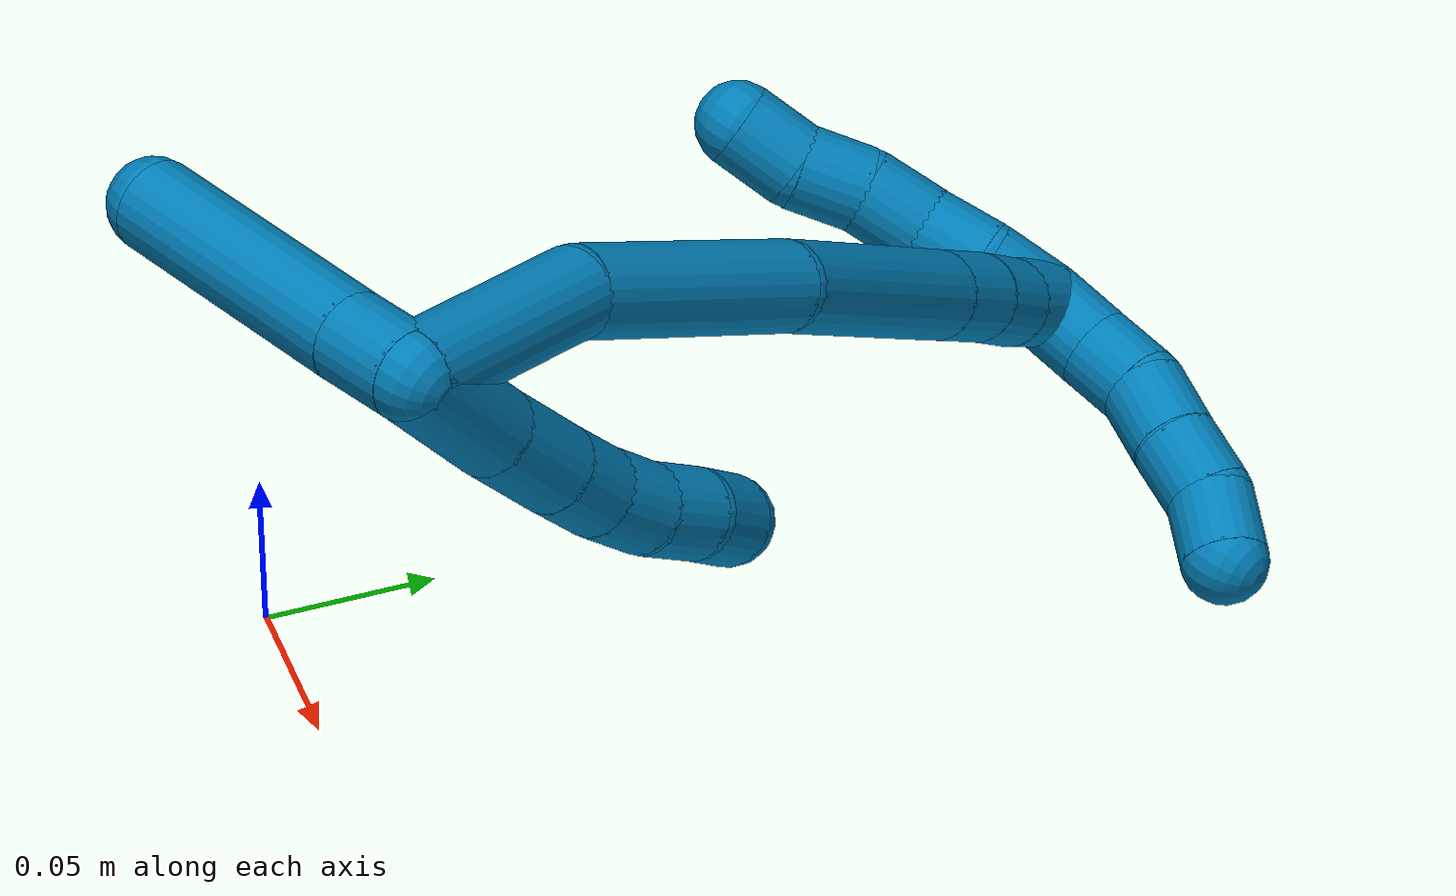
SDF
<sdf version="1.7">
 <world name="default">
  <model name="9">
   <static>0</static>
   <link name="9">
    <collision name="collision-cylinder-e_1_2_8">
     <pose>0.015421 0.012233 0.004197 -1.2403 0.872911 -0.643106</pose>
     <geometry><cylinder><radius>0.0125</radius><length>0.040253</length></cylinder></geometry>
     <surface>
      <friction><ode><mu>1.16</mu><mu2>1.16</mu2><slip1>0</slip1><slip2>0</slip2></ode></friction>
      <contact><ode><kp>1e+06</kp><kd>1</kd><max_vel>0</max_vel><min_depth>0.001</min_depth></ode></contact>
     </surface>
    </collision>
    <visual name="visual-cylinder-e_1_2_8">
     <pose>0.015421 0.012233 0.004197 -1.2403 0.872911 -0.643106</pose>
     <geometry><cylinder><radius>0.0125</radius><length>0.040253</length></cylinder></geometry>
     <material><ambient>0 0.490196 0.709804 1</ambient></material>
    </visual>
    <collision name="collision-cylinder-e_2_8_9">
     <pose>0.041478 0.033811 0.01191 -1.21091 0.817032 -0.582215</pose>
     <geometry><cylinder><radius>0.0125</radius><length>0.029174</length></cylinder></geometry>
     <surface>
      <friction><ode><mu>1.16</mu><mu2>1.16</mu2><slip1>0</slip1><slip2>0</slip2></ode></friction>
      <contact><ode><kp>1e+06</kp><kd>1</kd><max_vel>0</max_vel><min_depth>0.001</min_depth></ode></contact>
     </surface>
    </collision>
    <visual name="visual-cylinder-e_2_8_9">
     <pose>0.041478 0.033811 0.01191 -1.21091 0.817032 -0.582215</pose>
     <geometry><cylinder><radius>0.0125</radius><length>0.029174</length></cylinder></geometry>
     <material><ambient>0 0.490196 0.709804 1</ambient></material>
    </visual>
    <collision name="collision-cylinder-e_3_9_10">
     <pose>0.059451 0.049879 0.017755 -1.23732 0.800671 -0.585233</pose>
     <geometry><cylinder><radius>0.0125</radius><length>0.020444</length></cylinder></geometry>
     <surface>
      <friction><ode><mu>1.16</mu><mu2>1.16</mu2><slip1>0</slip1><slip2>0</slip2></ode></friction>
      <contact><ode><kp>1e+06</kp><kd>1</kd><max_vel>0</max_vel><min_depth>0.001</min_depth></ode></contact>
     </surface>
    </collision>
    <visual name="visual-cylinder-e_3_9_10">
     <pose>0.059451 0.049879 0.017755 -1.23732 0.800671 -0.585233</pose>
     <geometry><cylinder><radius>0.0125</radius><length>0.020444</length></cylinder></geometry>
     <material><ambient>0 0.490196 0.709804 1</ambient></material>
    </visual>
    <collision name="collision-cylinder-e_4_10_11">
     <pose>0.073129 0.063867 0.022905 -1.20044 0.683065 -0.477324</pose>
     <geometry><cylinder><radius>0.0125</radius><length>0.02009</length></cylinder></geometry>
     <surface>
      <friction><ode><mu>1.16</mu><mu2>1.16</mu2><slip1>0</slip1><slip2>0</slip2></ode></friction>
      <contact><ode><kp>1e+06</kp><kd>1</kd><max_vel>0</max_vel><min_depth>0.001</min_depth></ode></contact>
     </surface>
    </collision>
    <visual name="visual-cylinder-e_4_10_11">
     <pose>0.073129 0.063867 0.022905 -1.20044 0.683065 -0.477324</pose>
     <geometry><cylinder><radius>0.0125</radius><length>0.02009</length></cylinder></geometry>
     <material><ambient>0 0.490196 0.709804 1</ambient></material>
    </visual>
    <collision name="collision-cylinder-e_5_11_12">
     <pose>0.084755 0.079347 0.027881 -1.31423 0.556643 -0.43395</pose>
     <geometry><cylinder><radius>0.0125</radius><length>0.020012</length></cylinder></geometry>
     <surface>
      <friction><ode><mu>1.16</mu><mu2>1.16</mu2><slip1>0</slip1><slip2>0</slip2></ode></friction>
      <contact><ode><kp>1e+06</kp><kd>1</kd><max_vel>0</max_vel><min_depth>0.001</min_depth></ode></contact>
     </surface>
    </collision>
    <visual name="visual-cylinder-e_5_11_12">
     <pose>0.084755 0.079347 0.027881 -1.31423 0.556643 -0.43395</pose>
     <geometry><cylinder><radius>0.0125</radius><length>0.020012</length></cylinder></geometry>
     <material><ambient>0 0.490196 0.709804 1</ambient></material>
    </visual>
    <collision name="collision-cylinder-e_6_12_6">
     <pose>0.096499 0.095207 0.03043 -1.51928 0.700855 -0.66827</pose>
     <geometry><cylinder><radius>0.0125</radius><length>0.020027</length></cylinder></geometry>
     <surface>
      <friction><ode><mu>1.16</mu><mu2>1.16</mu2><slip1>0</slip1><slip2>0</slip2></ode></friction>
      <contact><ode><kp>1e+06</kp><kd>1</kd><max_vel>0</max_vel><min_depth>0.001</min_depth></ode></contact>
     </surface>
    </collision>
    <visual name="visual-cylinder-e_6_12_6">
     <pose>0.096499 0.095207 0.03043 -1.51928 0.700855 -0.66827</pose>
     <geometry><cylinder><radius>0.0125</radius><length>0.020027</length></cylinder></geometry>
     <material><ambient>0 0.490196 0.709804 1</ambient></material>
    </visual>
    <collision name="collision-cylinder-e_1_2_13">
     <pose>0.002239 0.001292 -0.010914 -3.02372 0.200938 -2.08249</pose>
     <geometry><cylinder><radius>0.0125</radius><length>0.022431</length></cylinder></geometry>
     <surface>
      <friction><ode><mu>1.16</mu><mu2>1.16</mu2><slip1>0</slip1><slip2>0</slip2></ode></friction>
      <contact><ode><kp>1e+06</kp><kd>1</kd><max_vel>0</max_vel><min_depth>0.001</min_depth></ode></contact>
     </surface>
    </collision>
    <visual name="visual-cylinder-e_1_2_13">
     <pose>0.002239 0.001292 -0.010914 -3.02372 0.200938 -2.08249</pose>
     <geometry><cylinder><radius>0.0125</radius><length>0.022431</length></cylinder></geometry>
     <material><ambient>0 0.490196 0.709804 1</ambient></material>
    </visual>
    <collision name="collision-cylinder-e_2_13_5">
     <pose>0.01128 0.007534 -0.059688 -3.01161 0.176305 -1.87215</pose>
     <geometry><cylinder><radius>0.0125</radius><length>0.077569</length></cylinder></geometry>
     <surface>
      <friction><ode><mu>1.16</mu><mu2>1.16</mu2><slip1>0</slip1><slip2>0</slip2></ode></friction>
      <contact><ode><kp>1e+06</kp><kd>1</kd><max_vel>0</max_vel><min_depth>0.001</min_depth></ode></contact>
     </surface>
    </collision>
    <visual name="visual-cylinder-e_2_13_5">
     <pose>0.01128 0.007534 -0.059688 -3.01161 0.176305 -1.87215</pose>
     <geometry><cylinder><radius>0.0125</radius><length>0.077569</length></cylinder></geometry>
     <material><ambient>0 0.490196 0.709804 1</ambient></material>
    </visual>
    <collision name="collision-cylinder-e_1_2_14">
     <pose>0.008455 0.032942 -0.000794 -1.59489 0.25117 -0.257229</pose>
     <geometry><cylinder><radius>0.0125</radius><length>0.068037</length></cylinder></geometry>
     <surface>
      <friction><ode><mu>1.16</mu><mu2>1.16</mu2><slip1>0</slip1><slip2>0</slip2></ode></friction>
      <contact><ode><kp>1e+06</kp><kd>1</kd><max_vel>0</max_vel><min_depth>0.001</min_depth></ode></contact>
     </surface>
    </collision>
    <visual name="visual-cylinder-e_1_2_14">
     <pose>0.008455 0.032942 -0.000794 -1.59489 0.25117 -0.257229</pose>
     <geometry><cylinder><radius>0.0125</radius><length>0.068037</length></cylinder></geometry>
     <material><ambient>0 0.490196 0.709804 1</ambient></material>
    </visual>
    <collision name="collision-cylinder-e_2_14_15">
     <pose>0.034687 0.101895 0.005932 -1.36495 0.450151 -0.367964</pose>
     <geometry><cylinder><radius>0.0125</radius><length>0.081717</length></cylinder></geometry>
     <surface>
      <friction><ode><mu>1.16</mu><mu2>1.16</mu2><slip1>0</slip1><slip2>0</slip2></ode></friction>
      <contact><ode><kp>1e+06</kp><kd>1</kd><max_vel>0</max_vel><min_depth>0.001</min_depth></ode></contact>
     </surface>
    </collision>
    <visual name="visual-cylinder-e_2_14_15">
     <pose>0.034687 0.101895 0.005932 -1.36495 0.450151 -0.367964</pose>
     <geometry><cylinder><radius>0.0125</radius><length>0.081717</length></cylinder></geometry>
     <material><ambient>0 0.490196 0.709804 1</ambient></material>
    </visual>
    <collision name="collision-cylinder-e_3_15_16">
     <pose>0.077142 0.173419 0.014624 -1.53777 0.607028 -0.588442</pose>
     <geometry><cylinder><radius>0.0125</radius><length>0.086521</length></cylinder></geometry>
     <surface>
      <friction><ode><mu>1.16</mu><mu2>1.16</mu2><slip1>0</slip1><slip2>0</slip2></ode></friction>
      <contact><ode><kp>1e+06</kp><kd>1</kd><max_vel>0</max_vel><min_depth>0.001</min_depth></ode></contact>
     </surface>
    </collision>
    <visual name="visual-cylinder-e_3_15_16">
     <pose>0.077142 0.173419 0.014624 -1.53777 0.607028 -0.588442</pose>
     <geometry><cylinder><radius>0.0125</radius><length>0.086521</length></cylinder></geometry>
     <material><ambient>0 0.490196 0.709804 1</ambient></material>
    </visual>
    <collision name="collision-cylinder-e_4_16_17">
     <pose>0.108405 0.218609 0.016272 -1.52178 0.596986 -0.569975</pose>
     <geometry><cylinder><radius>0.0125</radius><length>0.02343</length></cylinder></geometry>
     <surface>
      <friction><ode><mu>1.16</mu><mu2>1.16</mu2><slip1>0</slip1><slip2>0</slip2></ode></friction>
      <contact><ode><kp>1e+06</kp><kd>1</kd><max_vel>0</max_vel><min_depth>0.001</min_depth></ode></contact>
     </surface>
    </collision>
    <visual name="visual-cylinder-e_4_16_17">
     <pose>0.108405 0.218609 0.016272 -1.52178 0.596986 -0.569975</pose>
     <geometry><cylinder><radius>0.0125</radius><length>0.02343</length></cylinder></geometry>
     <material><ambient>0 0.490196 0.709804 1</ambient></material>
    </visual>
    <collision name="collision-cylinder-e_5_17_18">
     <pose>0.121104 0.236327 0.017146 -1.52122 0.649451 -0.620047</pose>
     <geometry><cylinder><radius>0.0125</radius><length>0.020217</length></cylinder></geometry>
     <surface>
      <friction><ode><mu>1.16</mu><mu2>1.16</mu2><slip1>0</slip1><slip2>0</slip2></ode></friction>
      <contact><ode><kp>1e+06</kp><kd>1</kd><max_vel>0</max_vel><min_depth>0.001</min_depth></ode></contact>
     </surface>
    </collision>
    <visual name="visual-cylinder-e_5_17_18">
     <pose>0.121104 0.236327 0.017146 -1.52122 0.649451 -0.620047</pose>
     <geometry><cylinder><radius>0.0125</radius><length>0.020217</length></cylinder></geometry>
     <material><ambient>0 0.490196 0.709804 1</ambient></material>
    </visual>
    <collision name="collision-cylinder-e_6_18_1">
     <pose>0.132774 0.252722 0.017859 -1.53315 0.586637 -0.566117</pose>
     <geometry><cylinder><radius>0.0125</radius><length>0.020077</length></cylinder></geometry>
     <surface>
      <friction><ode><mu>1.16</mu><mu2>1.16</mu2><slip1>0</slip1><slip2>0</slip2></ode></friction>
      <contact><ode><kp>1e+06</kp><kd>1</kd><max_vel>0</max_vel><min_depth>0.001</min_depth></ode></contact>
     </surface>
    </collision>
    <visual name="visual-cylinder-e_6_18_1">
     <pose>0.132774 0.252722 0.017859 -1.53315 0.586637 -0.566117</pose>
     <geometry><cylinder><radius>0.0125</radius><length>0.020077</length></cylinder></geometry>
     <material><ambient>0 0.490196 0.709804 1</ambient></material>
    </visual>
    <collision name="collision-cylinder-e_1_1_19">
     <pose>0.140434 0.26123 0.027949 -0.015774 0.211933 -0.001678</pose>
     <geometry><cylinder><radius>0.0125</radius><length>0.02</length></cylinder></geometry>
     <surface>
      <friction><ode><mu>1.16</mu><mu2>1.16</mu2><slip1>0</slip1><slip2>0</slip2></ode></friction>
      <contact><ode><kp>1e+06</kp><kd>1</kd><max_vel>0</max_vel><min_depth>0.001</min_depth></ode></contact>
     </surface>
    </collision>
    <visual name="visual-cylinder-e_1_1_19">
     <pose>0.140434 0.26123 0.027949 -0.015774 0.211933 -0.001678</pose>
     <geometry><cylinder><radius>0.0125</radius><length>0.02</length></cylinder></geometry>
     <material><ambient>0 0.490196 0.709804 1</ambient></material>
    </visual>
    <collision name="collision-cylinder-e_2_19_20">
     <pose>0.14204 0.259523 0.047537 0.187511 -0.049777 -0.004682</pose>
     <geometry><cylinder><radius>0.0125</radius><length>0.02</length></cylinder></geometry>
     <surface>
      <friction><ode><mu>1.16</mu><mu2>1.16</mu2><slip1>0</slip1><slip2>0</slip2></ode></friction>
      <contact><ode><kp>1e+06</kp><kd>1</kd><max_vel>0</max_vel><min_depth>0.001</min_depth></ode></contact>
     </surface>
    </collision>
    <visual name="visual-cylinder-e_2_19_20">
     <pose>0.14204 0.259523 0.047537 0.187511 -0.049777 -0.004682</pose>
     <geometry><cylinder><radius>0.0125</radius><length>0.02</length></cylinder></geometry>
     <material><ambient>0 0.490196 0.709804 1</ambient></material>
    </visual>
    <collision name="collision-cylinder-e_3_20_21">
     <pose>0.142726 0.253558 0.066392 0.425959 0.1186 0.025677</pose>
     <geometry><cylinder><radius>0.0125</radius><length>0.02</length></cylinder></geometry>
     <surface>
      <friction><ode><mu>1.16</mu><mu2>1.16</mu2><slip1>0</slip1><slip2>0</slip2></ode></friction>
      <contact><ode><kp>1e+06</kp><kd>1</kd><max_vel>0</max_vel><min_depth>0.001</min_depth></ode></contact>
     </surface>
    </collision>
    <visual name="visual-cylinder-e_3_20_21">
     <pose>0.142726 0.253558 0.066392 0.425959 0.1186 0.025677</pose>
     <geometry><cylinder><radius>0.0125</radius><length>0.02</length></cylinder></geometry>
     <material><ambient>0 0.490196 0.709804 1</ambient></material>
    </visual>
    <collision name="collision-cylinder-e_4_21_22">
     <pose>0.14546 0.245995 0.084687 0.357816 0.155709 0.028214</pose>
     <geometry><cylinder><radius>0.0125</radius><length>0.02</length></cylinder></geometry>
     <surface>
      <friction><ode><mu>1.16</mu><mu2>1.16</mu2><slip1>0</slip1><slip2>0</slip2></ode></friction>
      <contact><ode><kp>1e+06</kp><kd>1</kd><max_vel>0</max_vel><min_depth>0.001</min_depth></ode></contact>
     </surface>
    </collision>
    <visual name="visual-cylinder-e_4_21_22">
     <pose>0.14546 0.245995 0.084687 0.357816 0.155709 0.028214</pose>
     <geometry><cylinder><radius>0.0125</radius><length>0.02</length></cylinder></geometry>
     <material><ambient>0 0.490196 0.709804 1</ambient></material>
    </visual>
    <collision name="collision-cylinder-e_5_22_4">
     <pose>0.149407 0.236558 0.101591 0.663229 0.241997 0.083687</pose>
     <geometry><cylinder><radius>0.0125</radius><length>0.02</length></cylinder></geometry>
     <surface>
      <friction><ode><mu>1.16</mu><mu2>1.16</mu2><slip1>0</slip1><slip2>0</slip2></ode></friction>
      <contact><ode><kp>1e+06</kp><kd>1</kd><max_vel>0</max_vel><min_depth>0.001</min_depth></ode></contact>
     </surface>
    </collision>
    <visual name="visual-cylinder-e_5_22_4">
     <pose>0.149407 0.236558 0.101591 0.663229 0.241997 0.083687</pose>
     <geometry><cylinder><radius>0.0125</radius><length>0.02</length></cylinder></geometry>
     <material><ambient>0 0.490196 0.709804 1</ambient></material>
    </visual>
    <collision name="collision-cylinder-e_1_1_23">
     <pose>0.134734 0.258086 0.009335 2.81534 -0.367935 -1.69317</pose>
     <geometry><cylinder><radius>0.0125</radius><length>0.02</length></cylinder></geometry>
     <surface>
      <friction><ode><mu>1.16</mu><mu2>1.16</mu2><slip1>0</slip1><slip2>0</slip2></ode></friction>
      <contact><ode><kp>1e+06</kp><kd>1</kd><max_vel>0</max_vel><min_depth>0.001</min_depth></ode></contact>
     </surface>
    </collision>
    <visual name="visual-cylinder-e_1_1_23">
     <pose>0.134734 0.258086 0.009335 2.81534 -0.367935 -1.69317</pose>
     <geometry><cylinder><radius>0.0125</radius><length>0.02</length></cylinder></geometry>
     <material><ambient>0 0.490196 0.709804 1</ambient></material>
    </visual>
    <collision name="collision-cylinder-e_2_23_24">
     <pose>0.12957 0.252826 -0.009115 2.90977 -0.157399 -1.1907</pose>
     <geometry><cylinder><radius>0.0125</radius><length>0.02</length></cylinder></geometry>
     <surface>
      <friction><ode><mu>1.16</mu><mu2>1.16</mu2><slip1>0</slip1><slip2>0</slip2></ode></friction>
      <contact><ode><kp>1e+06</kp><kd>1</kd><max_vel>0</max_vel><min_depth>0.001</min_depth></ode></contact>
     </surface>
    </collision>
    <visual name="visual-cylinder-e_2_23_24">
     <pose>0.12957 0.252826 -0.009115 2.90977 -0.157399 -1.1907</pose>
     <geometry><cylinder><radius>0.0125</radius><length>0.02</length></cylinder></geometry>
     <material><ambient>0 0.490196 0.709804 1</ambient></material>
    </visual>
    <collision name="collision-cylinder-e_3_24_25">
     <pose>0.12468 0.247364 -0.027602 2.79622 -0.338674 -1.55082</pose>
     <geometry><cylinder><radius>0.0125</radius><length>0.02</length></cylinder></geometry>
     <surface>
      <friction><ode><mu>1.16</mu><mu2>1.16</mu2><slip1>0</slip1><slip2>0</slip2></ode></friction>
      <contact><ode><kp>1e+06</kp><kd>1</kd><max_vel>0</max_vel><min_depth>0.001</min_depth></ode></contact>
     </surface>
    </collision>
    <visual name="visual-cylinder-e_3_24_25">
     <pose>0.12468 0.247364 -0.027602 2.79622 -0.338674 -1.55082</pose>
     <geometry><cylinder><radius>0.0125</radius><length>0.02</length></cylinder></geometry>
     <material><ambient>0 0.490196 0.709804 1</ambient></material>
    </visual>
    <collision name="collision-cylinder-e_4_25_26">
     <pose>0.119014 0.238918 -0.044658 2.57077 -0.236509 -0.769464</pose>
     <geometry><cylinder><radius>0.0125</radius><length>0.02</length></cylinder></geometry>
     <surface>
      <friction><ode><mu>1.16</mu><mu2>1.16</mu2><slip1>0</slip1><slip2>0</slip2></ode></friction>
      <contact><ode><kp>1e+06</kp><kd>1</kd><max_vel>0</max_vel><min_depth>0.001</min_depth></ode></contact>
     </surface>
    </collision>
    <visual name="visual-cylinder-e_4_25_26">
     <pose>0.119014 0.238918 -0.044658 2.57077 -0.236509 -0.769464</pose>
     <geometry><cylinder><radius>0.0125</radius><length>0.02</length></cylinder></geometry>
     <material><ambient>0 0.490196 0.709804 1</ambient></material>
    </visual>
    <collision name="collision-cylinder-e_5_26_3">
     <pose>0.112796 0.230757 -0.061586 2.82068 -0.397978 -1.78897</pose>
     <geometry><cylinder><radius>0.0125</radius><length>0.02</length></cylinder></geometry>
     <surface>
      <friction><ode><mu>1.16</mu><mu2>1.16</mu2><slip1>0</slip1><slip2>0</slip2></ode></friction>
      <contact><ode><kp>1e+06</kp><kd>1</kd><max_vel>0</max_vel><min_depth>0.001</min_depth></ode></contact>
     </surface>
    </collision>
    <visual name="visual-cylinder-e_5_26_3">
     <pose>0.112796 0.230757 -0.061586 2.82068 -0.397978 -1.78897</pose>
     <geometry><cylinder><radius>0.0125</radius><length>0.02</length></cylinder></geometry>
     <material><ambient>0 0.490196 0.709804 1</ambient></material>
    </visual>
    <collision name="collision-sphere-3">
     <pose>0.10892 0.227849 -0.070334 0 -0 0</pose>
     <geometry><sphere><radius>0.0125</radius></sphere></geometry>
     <surface>
      <friction><ode><mu>1.16</mu><mu2>1.16</mu2><slip1>0</slip1><slip2>0</slip2></ode></friction>
      <contact><ode><kp>1e+06</kp><kd>1</kd><max_vel>0</max_vel><min_depth>0.001</min_depth></ode></contact>
     </surface>
    </collision>
    <visual name="visual-sphere-3">
     <pose>0.10892 0.227849 -0.070334 0 -0 0</pose>
     <geometry><sphere><radius>0.0125</radius></sphere></geometry>
     <material><ambient>0 0.490196 0.709804 1</ambient></material>
    </visual>
    <collision name="collision-sphere-26">
     <pose>0.116671 0.233665 -0.052838 0 -0 0</pose>
     <geometry><sphere><radius>0.0125</radius></sphere></geometry>
     <surface>
      <friction><ode><mu>1.16</mu><mu2>1.16</mu2><slip1>0</slip1><slip2>0</slip2></ode></friction>
      <contact><ode><kp>1e+06</kp><kd>1</kd><max_vel>0</max_vel><min_depth>0.001</min_depth></ode></contact>
     </surface>
    </collision>
    <visual name="visual-sphere-26">
     <pose>0.116671 0.233665 -0.052838 0 -0 0</pose>
     <geometry><sphere><radius>0.0125</radius></sphere></geometry>
     <material><ambient>0 0.490196 0.709804 1</ambient></material>
    </visual>
    <collision name="collision-sphere-25">
     <pose>0.121357 0.244171 -0.036477 0 -0 0</pose>
     <geometry><sphere><radius>0.0125</radius></sphere></geometry>
     <surface>
      <friction><ode><mu>1.16</mu><mu2>1.16</mu2><slip1>0</slip1><slip2>0</slip2></ode></friction>
      <contact><ode><kp>1e+06</kp><kd>1</kd><max_vel>0</max_vel><min_depth>0.001</min_depth></ode></contact>
     </surface>
    </collision>
    <visual name="visual-sphere-25">
     <pose>0.121357 0.244171 -0.036477 0 -0 0</pose>
     <geometry><sphere><radius>0.0125</radius></sphere></geometry>
     <material><ambient>0 0.490196 0.709804 1</ambient></material>
    </visual>
    <collision name="collision-sphere-24">
     <pose>0.128002 0.250557 -0.018727 0 -0 0</pose>
     <geometry><sphere><radius>0.0125</radius></sphere></geometry>
     <surface>
      <friction><ode><mu>1.16</mu><mu2>1.16</mu2><slip1>0</slip1><slip2>0</slip2></ode></friction>
      <contact><ode><kp>1e+06</kp><kd>1</kd><max_vel>0</max_vel><min_depth>0.001</min_depth></ode></contact>
     </surface>
    </collision>
    <visual name="visual-sphere-24">
     <pose>0.128002 0.250557 -0.018727 0 -0 0</pose>
     <geometry><sphere><radius>0.0125</radius></sphere></geometry>
     <material><ambient>0 0.490196 0.709804 1</ambient></material>
    </visual>
    <collision name="collision-sphere-23">
     <pose>0.131137 0.255095 0.000497 0 -0 0</pose>
     <geometry><sphere><radius>0.0125</radius></sphere></geometry>
     <surface>
      <friction><ode><mu>1.16</mu><mu2>1.16</mu2><slip1>0</slip1><slip2>0</slip2></ode></friction>
      <contact><ode><kp>1e+06</kp><kd>1</kd><max_vel>0</max_vel><min_depth>0.001</min_depth></ode></contact>
     </surface>
    </collision>
    <visual name="visual-sphere-23">
     <pose>0.131137 0.255095 0.000497 0 -0 0</pose>
     <geometry><sphere><radius>0.0125</radius></sphere></geometry>
     <material><ambient>0 0.490196 0.709804 1</ambient></material>
    </visual>
    <collision name="collision-sphere-4">
     <pose>0.151804 0.230581 0.109242 0 -0 0</pose>
     <geometry><sphere><radius>0.0125</radius></sphere></geometry>
     <surface>
      <friction><ode><mu>1.16</mu><mu2>1.16</mu2><slip1>0</slip1><slip2>0</slip2></ode></friction>
      <contact><ode><kp>1e+06</kp><kd>1</kd><max_vel>0</max_vel><min_depth>0.001</min_depth></ode></contact>
     </surface>
    </collision>
    <visual name="visual-sphere-4">
     <pose>0.151804 0.230581 0.109242 0 -0 0</pose>
     <geometry><sphere><radius>0.0125</radius></sphere></geometry>
     <material><ambient>0 0.490196 0.709804 1</ambient></material>
    </visual>
    <collision name="collision-sphere-22">
     <pose>0.147011 0.242535 0.093941 0 -0 0</pose>
     <geometry><sphere><radius>0.0125</radius></sphere></geometry>
     <surface>
      <friction><ode><mu>1.16</mu><mu2>1.16</mu2><slip1>0</slip1><slip2>0</slip2></ode></friction>
      <contact><ode><kp>1e+06</kp><kd>1</kd><max_vel>0</max_vel><min_depth>0.001</min_depth></ode></contact>
     </surface>
    </collision>
    <visual name="visual-sphere-22">
     <pose>0.147011 0.242535 0.093941 0 -0 0</pose>
     <geometry><sphere><radius>0.0125</radius></sphere></geometry>
     <material><ambient>0 0.490196 0.709804 1</ambient></material>
    </visual>
    <collision name="collision-sphere-21">
     <pose>0.143909 0.249455 0.075434 0 -0 0</pose>
     <geometry><sphere><radius>0.0125</radius></sphere></geometry>
     <surface>
      <friction><ode><mu>1.16</mu><mu2>1.16</mu2><slip1>0</slip1><slip2>0</slip2></ode></friction>
      <contact><ode><kp>1e+06</kp><kd>1</kd><max_vel>0</max_vel><min_depth>0.001</min_depth></ode></contact>
     </surface>
    </collision>
    <visual name="visual-sphere-21">
     <pose>0.143909 0.249455 0.075434 0 -0 0</pose>
     <geometry><sphere><radius>0.0125</radius></sphere></geometry>
     <material><ambient>0 0.490196 0.709804 1</ambient></material>
    </visual>
    <collision name="collision-sphere-20">
     <pose>0.141543 0.257661 0.057349 0 -0 0</pose>
     <geometry><sphere><radius>0.0125</radius></sphere></geometry>
     <surface>
      <friction><ode><mu>1.16</mu><mu2>1.16</mu2><slip1>0</slip1><slip2>0</slip2></ode></friction>
      <contact><ode><kp>1e+06</kp><kd>1</kd><max_vel>0</max_vel><min_depth>0.001</min_depth></ode></contact>
     </surface>
    </collision>
    <visual name="visual-sphere-20">
     <pose>0.141543 0.257661 0.057349 0 -0 0</pose>
     <geometry><sphere><radius>0.0125</radius></sphere></geometry>
     <material><ambient>0 0.490196 0.709804 1</ambient></material>
    </visual>
    <collision name="collision-sphere-12">
     <pose>0.090042 0.087564 0.030036 0 -0 0</pose>
     <geometry><sphere><radius>0.0125</radius></sphere></geometry>
     <surface>
      <friction><ode><mu>1.16</mu><mu2>1.16</mu2><slip1>0</slip1><slip2>0</slip2></ode></friction>
      <contact><ode><kp>1e+06</kp><kd>1</kd><max_vel>0</max_vel><min_depth>0.001</min_depth></ode></contact>
     </surface>
    </collision>
    <visual name="visual-sphere-12">
     <pose>0.090042 0.087564 0.030036 0 -0 0</pose>
     <geometry><sphere><radius>0.0125</radius></sphere></geometry>
     <material><ambient>0 0.490196 0.709804 1</ambient></material>
    </visual>
    <collision name="collision-sphere-11">
     <pose>0.079469 0.07113 0.025725 0 -0 0</pose>
     <geometry><sphere><radius>0.0125</radius></sphere></geometry>
     <surface>
      <friction><ode><mu>1.16</mu><mu2>1.16</mu2><slip1>0</slip1><slip2>0</slip2></ode></friction>
      <contact><ode><kp>1e+06</kp><kd>1</kd><max_vel>0</max_vel><min_depth>0.001</min_depth></ode></contact>
     </surface>
    </collision>
    <visual name="visual-sphere-11">
     <pose>0.079469 0.07113 0.025725 0 -0 0</pose>
     <geometry><sphere><radius>0.0125</radius></sphere></geometry>
     <material><ambient>0 0.490196 0.709804 1</ambient></material>
    </visual>
    <collision name="collision-sphere-10">
     <pose>0.066789 0.056604 0.020085 0 -0 0</pose>
     <geometry><sphere><radius>0.0125</radius></sphere></geometry>
     <surface>
      <friction><ode><mu>1.16</mu><mu2>1.16</mu2><slip1>0</slip1><slip2>0</slip2></ode></friction>
      <contact><ode><kp>1e+06</kp><kd>1</kd><max_vel>0</max_vel><min_depth>0.001</min_depth></ode></contact>
     </surface>
    </collision>
    <visual name="visual-sphere-10">
     <pose>0.066789 0.056604 0.020085 0 -0 0</pose>
     <geometry><sphere><radius>0.0125</radius></sphere></geometry>
     <material><ambient>0 0.490196 0.709804 1</ambient></material>
    </visual>
    <collision name="collision-sphere-9">
     <pose>0.052114 0.043154 0.015426 0 -0 0</pose>
     <geometry><sphere><radius>0.0125</radius></sphere></geometry>
     <surface>
      <friction><ode><mu>1.16</mu><mu2>1.16</mu2><slip1>0</slip1><slip2>0</slip2></ode></friction>
      <contact><ode><kp>1e+06</kp><kd>1</kd><max_vel>0</max_vel><min_depth>0.001</min_depth></ode></contact>
     </surface>
    </collision>
    <visual name="visual-sphere-9">
     <pose>0.052114 0.043154 0.015426 0 -0 0</pose>
     <geometry><sphere><radius>0.0125</radius></sphere></geometry>
     <material><ambient>0 0.490196 0.709804 1</ambient></material>
    </visual>
    <collision name="collision-sphere-2">
     <geometry><sphere><radius>0.0125</radius></sphere></geometry>
     <surface>
      <friction><ode><mu>1.16</mu><mu2>1.16</mu2><slip1>0</slip1><slip2>0</slip2></ode></friction>
      <contact><ode><kp>1e+06</kp><kd>1</kd><max_vel>0</max_vel><min_depth>0.001</min_depth></ode></contact>
     </surface>
    </collision>
    <visual name="visual-sphere-2">
     <geometry><sphere><radius>0.0125</radius></sphere></geometry>
     <material><ambient>0 0.490196 0.709804 1</ambient></material>
    </visual>
    <collision name="collision-sphere-19">
     <pose>0.142538 0.261384 0.037724 0 -0 0</pose>
     <geometry><sphere><radius>0.0125</radius></sphere></geometry>
     <surface>
      <friction><ode><mu>1.16</mu><mu2>1.16</mu2><slip1>0</slip1><slip2>0</slip2></ode></friction>
      <contact><ode><kp>1e+06</kp><kd>1</kd><max_vel>0</max_vel><min_depth>0.001</min_depth></ode></contact>
     </surface>
    </collision>
    <visual name="visual-sphere-19">
     <pose>0.142538 0.261384 0.037724 0 -0 0</pose>
     <geometry><sphere><radius>0.0125</radius></sphere></geometry>
     <material><ambient>0 0.490196 0.709804 1</ambient></material>
    </visual>
    <collision name="collision-sphere-8">
     <pose>0.030842 0.024467 0.008394 0 -0 0</pose>
     <geometry><sphere><radius>0.0125</radius></sphere></geometry>
     <surface>
      <friction><ode><mu>1.16</mu><mu2>1.16</mu2><slip1>0</slip1><slip2>0</slip2></ode></friction>
      <contact><ode><kp>1e+06</kp><kd>1</kd><max_vel>0</max_vel><min_depth>0.001</min_depth></ode></contact>
     </surface>
    </collision>
    <visual name="visual-sphere-8">
     <pose>0.030842 0.024467 0.008394 0 -0 0</pose>
     <geometry><sphere><radius>0.0125</radius></sphere></geometry>
     <material><ambient>0 0.490196 0.709804 1</ambient></material>
    </visual>
    <collision name="collision-sphere-6">
     <pose>0.102957 0.10285 0.030825 0 -0 0</pose>
     <geometry><sphere><radius>0.0125</radius></sphere></geometry>
     <surface>
      <friction><ode><mu>1.16</mu><mu2>1.16</mu2><slip1>0</slip1><slip2>0</slip2></ode></friction>
      <contact><ode><kp>1e+06</kp><kd>1</kd><max_vel>0</max_vel><min_depth>0.001</min_depth></ode></contact>
     </surface>
    </collision>
    <visual name="visual-sphere-6">
     <pose>0.102957 0.10285 0.030825 0 -0 0</pose>
     <geometry><sphere><radius>0.0125</radius></sphere></geometry>
     <material><ambient>0 0.490196 0.709804 1</ambient></material>
    </visual>
    <collision name="collision-sphere-13">
     <pose>0.004477 0.002585 -0.021827 0 -0 0</pose>
     <geometry><sphere><radius>0.0125</radius></sphere></geometry>
     <surface>
      <friction><ode><mu>1.16</mu><mu2>1.16</mu2><slip1>0</slip1><slip2>0</slip2></ode></friction>
      <contact><ode><kp>1e+06</kp><kd>1</kd><max_vel>0</max_vel><min_depth>0.001</min_depth></ode></contact>
     </surface>
    </collision>
    <visual name="visual-sphere-13">
     <pose>0.004477 0.002585 -0.021827 0 -0 0</pose>
     <geometry><sphere><radius>0.0125</radius></sphere></geometry>
     <material><ambient>0 0.490196 0.709804 1</ambient></material>
    </visual>
    <collision name="collision-sphere-5">
     <pose>0.018082 0.012483 -0.09755 0 -0 0</pose>
     <geometry><sphere><radius>0.0125</radius></sphere></geometry>
     <surface>
      <friction><ode><mu>1.16</mu><mu2>1.16</mu2><slip1>0</slip1><slip2>0</slip2></ode></friction>
      <contact><ode><kp>1e+06</kp><kd>1</kd><max_vel>0</max_vel><min_depth>0.001</min_depth></ode></contact>
     </surface>
    </collision>
    <visual name="visual-sphere-5">
     <pose>0.018082 0.012483 -0.09755 0 -0 0</pose>
     <geometry><sphere><radius>0.0125</radius></sphere></geometry>
     <material><ambient>0 0.490196 0.709804 1</ambient></material>
    </visual>
    <collision name="collision-sphere-14">
     <pose>0.01691 0.065883 -0.001588 0 -0 0</pose>
     <geometry><sphere><radius>0.0125</radius></sphere></geometry>
     <surface>
      <friction><ode><mu>1.16</mu><mu2>1.16</mu2><slip1>0</slip1><slip2>0</slip2></ode></friction>
      <contact><ode><kp>1e+06</kp><kd>1</kd><max_vel>0</max_vel><min_depth>0.001</min_depth></ode></contact>
     </surface>
    </collision>
    <visual name="visual-sphere-14">
     <pose>0.01691 0.065883 -0.001588 0 -0 0</pose>
     <geometry><sphere><radius>0.0125</radius></sphere></geometry>
     <material><ambient>0 0.490196 0.709804 1</ambient></material>
    </visual>
    <collision name="collision-sphere-15">
     <pose>0.052465 0.137907 0.013451 0 -0 0</pose>
     <geometry><sphere><radius>0.0125</radius></sphere></geometry>
     <surface>
      <friction><ode><mu>1.16</mu><mu2>1.16</mu2><slip1>0</slip1><slip2>0</slip2></ode></friction>
      <contact><ode><kp>1e+06</kp><kd>1</kd><max_vel>0</max_vel><min_depth>0.001</min_depth></ode></contact>
     </surface>
    </collision>
    <visual name="visual-sphere-15">
     <pose>0.052465 0.137907 0.013451 0 -0 0</pose>
     <geometry><sphere><radius>0.0125</radius></sphere></geometry>
     <material><ambient>0 0.490196 0.709804 1</ambient></material>
    </visual>
    <collision name="collision-sphere-16">
     <pose>0.101819 0.208932 0.015797 0 -0 0</pose>
     <geometry><sphere><radius>0.0125</radius></sphere></geometry>
     <surface>
      <friction><ode><mu>1.16</mu><mu2>1.16</mu2><slip1>0</slip1><slip2>0</slip2></ode></friction>
      <contact><ode><kp>1e+06</kp><kd>1</kd><max_vel>0</max_vel><min_depth>0.001</min_depth></ode></contact>
     </surface>
    </collision>
    <visual name="visual-sphere-16">
     <pose>0.101819 0.208932 0.015797 0 -0 0</pose>
     <geometry><sphere><radius>0.0125</radius></sphere></geometry>
     <material><ambient>0 0.490196 0.709804 1</ambient></material>
    </visual>
    <collision name="collision-sphere-17">
     <pose>0.114991 0.228286 0.016747 0 -0 0</pose>
     <geometry><sphere><radius>0.0125</radius></sphere></geometry>
     <surface>
      <friction><ode><mu>1.16</mu><mu2>1.16</mu2><slip1>0</slip1><slip2>0</slip2></ode></friction>
      <contact><ode><kp>1e+06</kp><kd>1</kd><max_vel>0</max_vel><min_depth>0.001</min_depth></ode></contact>
     </surface>
    </collision>
    <visual name="visual-sphere-17">
     <pose>0.114991 0.228286 0.016747 0 -0 0</pose>
     <geometry><sphere><radius>0.0125</radius></sphere></geometry>
     <material><ambient>0 0.490196 0.709804 1</ambient></material>
    </visual>
    <collision name="collision-sphere-18">
     <pose>0.127217 0.244367 0.017545 0 -0 0</pose>
     <geometry><sphere><radius>0.0125</radius></sphere></geometry>
     <surface>
      <friction><ode><mu>1.16</mu><mu2>1.16</mu2><slip1>0</slip1><slip2>0</slip2></ode></friction>
      <contact><ode><kp>1e+06</kp><kd>1</kd><max_vel>0</max_vel><min_depth>0.001</min_depth></ode></contact>
     </surface>
    </collision>
    <visual name="visual-sphere-18">
     <pose>0.127217 0.244367 0.017545 0 -0 0</pose>
     <geometry><sphere><radius>0.0125</radius></sphere></geometry>
     <material><ambient>0 0.490196 0.709804 1</ambient></material>
    </visual>
    <collision name="collision-sphere-1">
     <pose>0.138331 0.261076 0.018174 0 -0 0</pose>
     <geometry><sphere><radius>0.0125</radius></sphere></geometry>
     <surface>
      <friction><ode><mu>1.16</mu><mu2>1.16</mu2><slip1>0</slip1><slip2>0</slip2></ode></friction>
      <contact><ode><kp>1e+06</kp><kd>1</kd><max_vel>0</max_vel><min_depth>0.001</min_depth></ode></contact>
     </surface>
    </collision>
    <visual name="visual-sphere-1">
     <pose>0.138331 0.261076 0.018174 0 -0 0</pose>
     <geometry><sphere><radius>0.0125</radius></sphere></geometry>
     <material><ambient>0 0.490196 0.709804 1</ambient></material>
    </visual>
    <inertial>
     <pose>0.0715 0.130843 0.00574 0 -0 0</pose>
     <mass>0.75</mass>
     <inertia><ixx>2.9e-05</ixx><ixy>0</ixy><ixz>0</ixz><iyy>-1e-05</iyy><iyz>0</iyz><izz>-0.000219</izz></inertia>
    </inertial>
   </link>
   <pose>0.162546 -0.003351 0.216024 3.13416 1.43098 -2.62057</pose>
  </model>
 </world>
</sdf>
